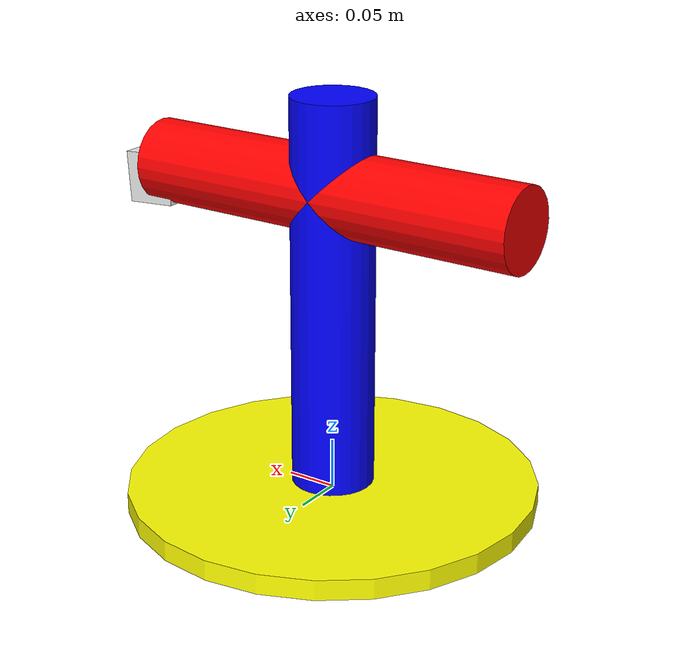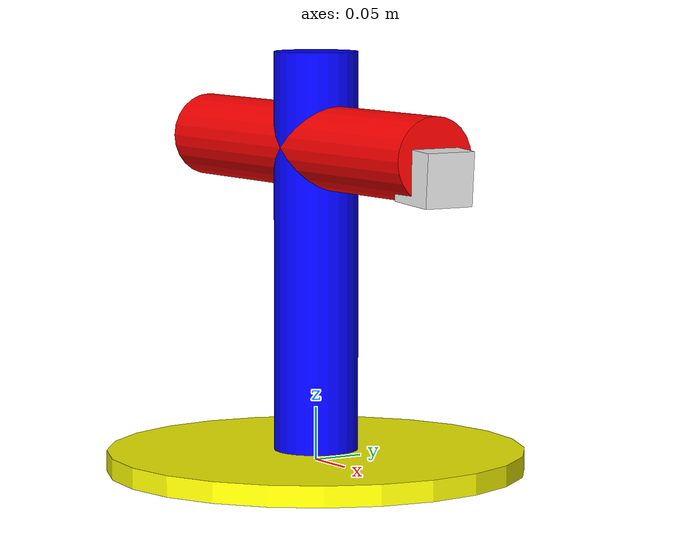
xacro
<?xml version="1.0"?>

<robot xmlns:xacro="http://www.ros.org/wiki/xacro"
 	xmlns:sensor="http://playerstage.sourceforge.net/gazebo/xmlschema/#sensor"
    	xmlns:controller="http://playerstage.sourceforge.net/gazebo/xmlschema/#controller"
    	xmlns:interface="http://playerstage.sourceforge.net/gazebo/xmlschema/#interface"
	name="pan_tilt">

	<xacro:property name="base_link_length" value="0.02" />
	<xacro:property name="base_link_radius" value="0.2" />

	<xacro:property name="pan_link_length" value="0.4" />
	<xacro:property name="pan_link_radius" value="0.04" />

	<xacro:property name="tilt_link_length" value="0.4" />
	<xacro:property name="tilt_link_radius" value="0.04" />

	<xacro:macro name="inertial_matrix" params="mass">
               <inertial>
                       <mass value="${mass}" />
                       <inertia ixx="0.5" ixy="0.0" ixz="0.0"
                                iyy="0.5" iyz="0.0"
                                izz="0.5" />
               </inertial>
	</xacro:macro>

        <xacro:macro name="transmission_block" params="joint_name">
	  <transmission name="tran1">
	    <type>transmission_interface/SimpleTransmission</type>
	    <joint name="${joint_name}">
	      <hardwareInterface>hardware_interface/PositionJointInterface</hardwareInterface>
	    </joint>
	    <actuator name="motor1">
	      <hardwareInterface>hardware_interface/PositionJointInterface</hardwareInterface>
	      <mechanicalReduction>1</mechanicalReduction>
	    </actuator>
	  </transmission>
        </xacro:macro>

  <link name="world" />

  <joint name="team_A_calibration_joint" type="fixed">
     <parent link="world" />
     <child link="base_link" />
     <origin xyz="0 0 0" rpy="0 0 0" />
  </joint>

  <link name="base_link">
    <visual>
      <geometry>
	<cylinder length="${base_link_length}" radius="${base_link_radius}"/>
      </geometry>
      <origin rpy="0 0 0" xyz="0 0 0"/>
      <material name="yellow">
        <color rgba="1 1 0 1"/>
      </material>
    </visual>
    <collision>
      <geometry>
	<cylinder length="${base_link_length}" radius="0.2"/>
      </geometry>
      <origin rpy="0 0 0" xyz="0 0 0"/>
    </collision>
    <xacro:inertial_matrix mass="10000"/>
  </link>

  <joint name="pan_joint" type="revolute">
    <parent link="base_link"/>
    <child link="pan_link"/>
    <origin xyz="0 0 0.1"/>
    <axis xyz="0 0 1" />
    <limit effort="300" velocity="0.1" lower="-3.14" upper="3.14"/>
    <dynamics damping="0.7" friction="1"/>
  </joint>

  <link name="pan_link">
    <visual>
      <geometry>
	<cylinder length="${pan_link_length}" radius="${pan_link_radius}"/>
      </geometry>
      <origin rpy="0 0 0" xyz="0 0 0.09"/>
      <material name="blue">
        <color rgba="0 0 1 1"/>
      </material>
    </visual>
    <collision>
      <geometry>
	<cylinder length="${pan_link_length}" radius="${pan_link_radius+0.02}"/>
      </geometry>
      <origin rpy="0 0 0" xyz="0 0 0.09"/>
    </collision>
    <xacro:inertial_matrix mass="1"/>
  </link>

  <gazebo reference="pan_link">
    <material>Gazebo/Blue</material>
  </gazebo>

  <joint name="tilt_joint" type="revolute">
    <parent link="pan_link"/>
    <child link="tilt_link"/>
    <origin xyz="0 0 0.2"/>
    <axis xyz="0 1 0" />
    <limit effort="300" velocity="0.1" lower="-4.64" upper="-1.5"/>
    <dynamics damping="0.7" friction="1"/>
  </joint>

  <link name="tilt_link">
    <visual>
      <geometry>
	<cylinder length="${tilt_link_length}" radius="${tilt_link_radius}"/>
      </geometry>
      <origin rpy="0 1.5 0" xyz="0 0 0"/>
      <material name="red">
        <color rgba="1 0 0 1"/>
      </material>
    </visual>
    <collision>
      <geometry>
	<cylinder length="${tilt_link_length}" radius="${tilt_link_radius+0.2}"/>
      </geometry>
      <origin rpy="0 1.5 0" xyz="0 0 0"/>
    </collision>
    <xacro:inertial_matrix mass="1"/>
  </link>

  <gazebo reference="tilt_link">
    <material>Gazebo/Red</material>
  </gazebo>

  <joint name="grasping_frame_joint" type="fixed">
      <parent link="tilt_link"/>
      <child link="grasping_frame"/>
      <origin xyz="${-tilt_link_length/2.0} 0 0" rpy="0.0 -1.570796327 0.0"/>
  </joint>

  <link name="grasping_frame">
    <visual>
      <origin xyz="0 0 0"/>
      <geometry>
          <box size="0.05 0.05 0.05 " />
      </geometry>
      <material name="White" />
    </visual>
    <collision>
      <origin xyz="0 0 0"/>
      <geometry>
          <box size="0.05 0.05 0.05 " />
      </geometry>
    </collision>
    <xacro:inertial_matrix mass="0.00001"/>
  </link>

  <gazebo reference="grasping_frame">
    <material>Gazebo/Grey</material>
  </gazebo>

  <!-- Transmissions for ROS Control -->

   <xacro:transmission_block joint_name="pan_joint"/>
   <xacro:transmission_block joint_name="tilt_joint"/>
 <!-- ros_control plugin -->
  <gazebo>
    <plugin name="gazebo_ros_control" filename="libgazebo_ros_control.so">
      <robotNamespace>/pan_tilt</robotNamespace>
      <robotSimType>gazebo_ros_control/DefaultRobotHWSim</robotSimType>
    </plugin>
  </gazebo>

</robot>
